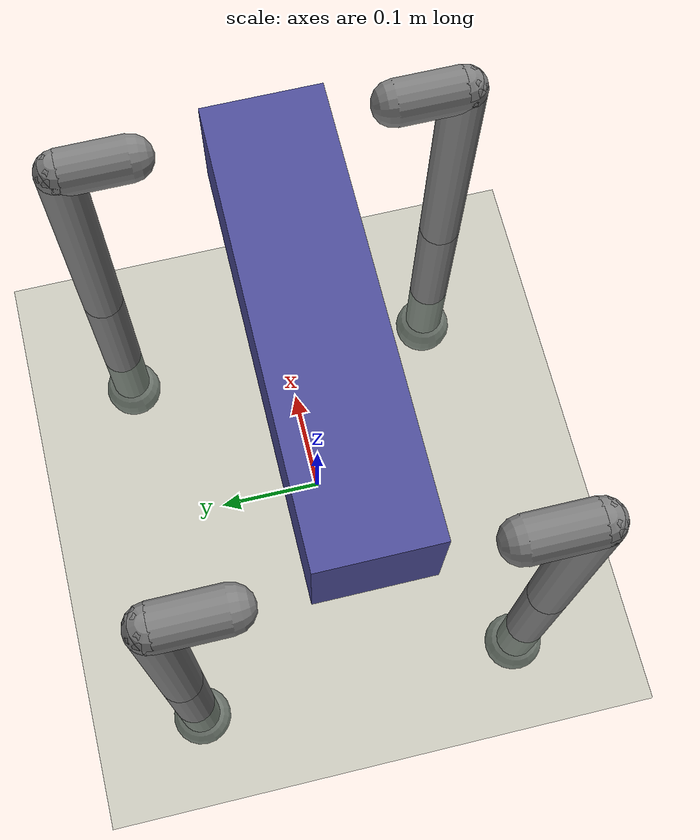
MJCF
<mujoco model="paramquad">
  <compiler angle="radian" autolimits="true"/>
  <option timestep="0.004" integrator="implicitfast"/>
  <default>
    <joint damping="0.05" armature="0.02430"/>
    <geom friction="2.8 0.28 0.28" contype="1" conaffinity="1"/>
  </default>
  <worldbody>
    <geom name="floor" type="plane" size="0 0 0.1" pos="0 0 0" rgba="0.4 0.5 0.4 1"/>
    <body name="torso" pos="0.0 0.0 0.38" quat="1 0 0 0"><freejoint name="root"/><geom name="torso" type="box" size="0.19 0.05 0.05" mass="0.5479633165" rgba="0.3 0.3 0.6 1"/>
      <body name="FL_hip" pos="0.19 0.11 0.0">
        <joint name="FL_abd" axis="1 0 0" range="-0.8 0.8" stiffness="0.5" springref="0.0"/>
        <geom name="FL_hipg" type="capsule" fromto="0 0 0 0 0.060 0" size="0.02" mass="0.133755598"/>
        <body name="FL_thigh" pos="0 0.060 0">
          <joint name="FL_flex" axis="0 1 0" range="-1.5 1.5" stiffness="0.5" springref="0.15"/>
          <geom name="FL_thighg" type="capsule" fromto="0 0 0 0 0 -0.24" size="0.02" mass="0.199511196"/>
          <body name="FL_calf" pos="0 0 -0.24">
            <joint name="FL_knee" axis="0 1 0" range="-2.6 -0.4" stiffness="0.5" springref="-1.25"/>
            <geom name="FL_calfg" type="capsule" fromto="0 0 0 0 0 -0.24" size="0.02" mass="0.11183706500000001"/>
            <geom name="FL_foot" type="sphere" pos="0 0 -0.24" size="0.03" mass="0.010959266"/>
          </body>
        </body>
      </body>
      <body name="FR_hip" pos="0.19 -0.11 0.0">
        <joint name="FR_abd" axis="1 0 0" range="-0.8 0.8" stiffness="0.5" springref="0.0"/>
        <geom name="FR_hipg" type="capsule" fromto="0 0 0 0 -0.060 0" size="0.02" mass="0.133755598"/>
        <body name="FR_thigh" pos="0 -0.060 0">
          <joint name="FR_flex" axis="0 1 0" range="-1.5 1.5" stiffness="0.5" springref="0.15"/>
          <geom name="FR_thighg" type="capsule" fromto="0 0 0 0 0 -0.24" size="0.02" mass="0.199511196"/>
          <body name="FR_calf" pos="0 0 -0.24">
            <joint name="FR_knee" axis="0 1 0" range="-2.6 -0.4" stiffness="0.5" springref="-1.25"/>
            <geom name="FR_calfg" type="capsule" fromto="0 0 0 0 0 -0.24" size="0.02" mass="0.11183706500000001"/>
            <geom name="FR_foot" type="sphere" pos="0 0 -0.24" size="0.03" mass="0.010959266"/>
          </body>
        </body>
      </body>
      <body name="RL_hip" pos="-0.19 0.11 0.0">
        <joint name="RL_abd" axis="1 0 0" range="-0.8 0.8" stiffness="0.5" springref="0.0"/>
        <geom name="RL_hipg" type="capsule" fromto="0 0 0 0 0.060 0" size="0.02" mass="0.133755598"/>
        <body name="RL_thigh" pos="0 0.060 0">
          <joint name="RL_flex" axis="0 1 0" range="-1.5 1.5" stiffness="0.5" springref="0.15"/>
          <geom name="RL_thighg" type="capsule" fromto="0 0 0 0 0 -0.24" size="0.02" mass="0.199511196"/>
          <body name="RL_calf" pos="0 0 -0.24">
            <joint name="RL_knee" axis="0 1 0" range="-2.6 -0.4" stiffness="0.5" springref="-1.25"/>
            <geom name="RL_calfg" type="capsule" fromto="0 0 0 0 0 -0.24" size="0.02" mass="0.11183706500000001"/>
            <geom name="RL_foot" type="sphere" pos="0 0 -0.24" size="0.03" mass="0.010959266"/>
          </body>
        </body>
      </body>
      <body name="RR_hip" pos="-0.19 -0.11 0.0">
        <joint name="RR_abd" axis="1 0 0" range="-0.8 0.8" stiffness="0.5" springref="0.0"/>
        <geom name="RR_hipg" type="capsule" fromto="0 0 0 0 -0.060 0" size="0.02" mass="0.133755598"/>
        <body name="RR_thigh" pos="0 -0.060 0">
          <joint name="RR_flex" axis="0 1 0" range="-1.5 1.5" stiffness="0.5" springref="0.15"/>
          <geom name="RR_thighg" type="capsule" fromto="0 0 0 0 0 -0.24" size="0.02" mass="0.199511196"/>
          <body name="RR_calf" pos="0 0 -0.24">
            <joint name="RR_knee" axis="0 1 0" range="-2.6 -0.4" stiffness="0.5" springref="-1.25"/>
            <geom name="RR_calfg" type="capsule" fromto="0 0 0 0 0 -0.24" size="0.02" mass="0.11183706500000001"/>
            <geom name="RR_foot" type="sphere" pos="0 0 -0.24" size="0.03" mass="0.010959266"/>
          </body>
        </body>
      </body></body>
  </worldbody>
  <actuator>
    <motor name="FL_abd_m" joint="FL_abd" gear="5.884" ctrlrange="-1 1" forcerange="-5.884 5.884"/>
    <motor name="FL_flex_m" joint="FL_flex" gear="5.884" ctrlrange="-1 1" forcerange="-5.884 5.884"/>
    <motor name="FL_knee_m" joint="FL_knee" gear="5.884" ctrlrange="-1 1" forcerange="-5.884 5.884"/>
    <motor name="FR_abd_m" joint="FR_abd" gear="5.884" ctrlrange="-1 1" forcerange="-5.884 5.884"/>
    <motor name="FR_flex_m" joint="FR_flex" gear="5.884" ctrlrange="-1 1" forcerange="-5.884 5.884"/>
    <motor name="FR_knee_m" joint="FR_knee" gear="5.884" ctrlrange="-1 1" forcerange="-5.884 5.884"/>
    <motor name="RL_abd_m" joint="RL_abd" gear="5.884" ctrlrange="-1 1" forcerange="-5.884 5.884"/>
    <motor name="RL_flex_m" joint="RL_flex" gear="5.884" ctrlrange="-1 1" forcerange="-5.884 5.884"/>
    <motor name="RL_knee_m" joint="RL_knee" gear="5.884" ctrlrange="-1 1" forcerange="-5.884 5.884"/>
    <motor name="RR_abd_m" joint="RR_abd" gear="5.884" ctrlrange="-1 1" forcerange="-5.884 5.884"/>
    <motor name="RR_flex_m" joint="RR_flex" gear="5.884" ctrlrange="-1 1" forcerange="-5.884 5.884"/>
    <motor name="RR_knee_m" joint="RR_knee" gear="5.884" ctrlrange="-1 1" forcerange="-5.884 5.884"/>
  </actuator>
</mujoco>
